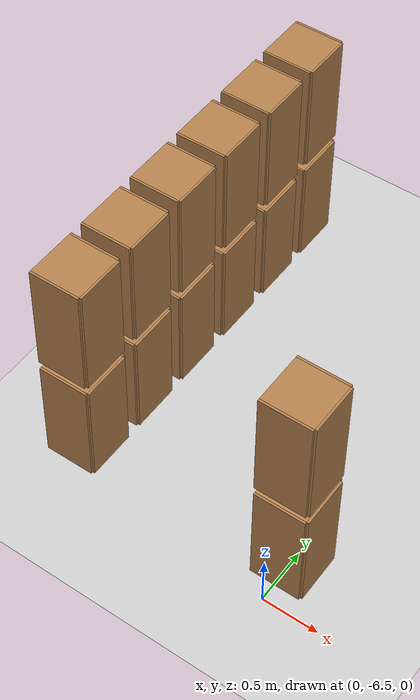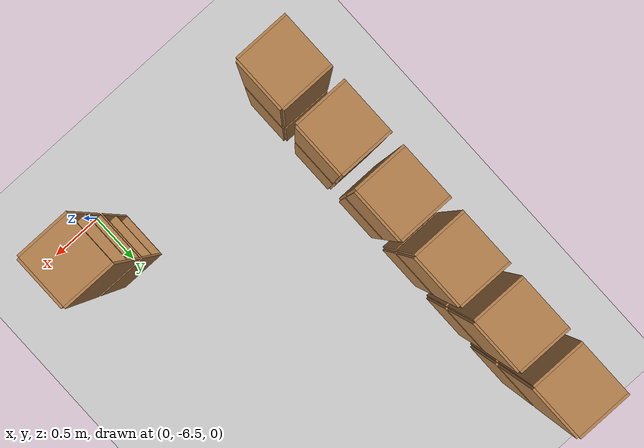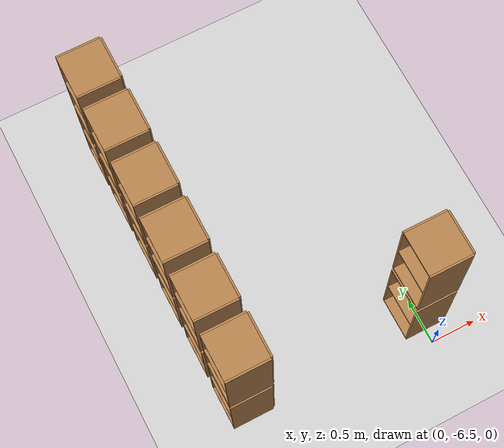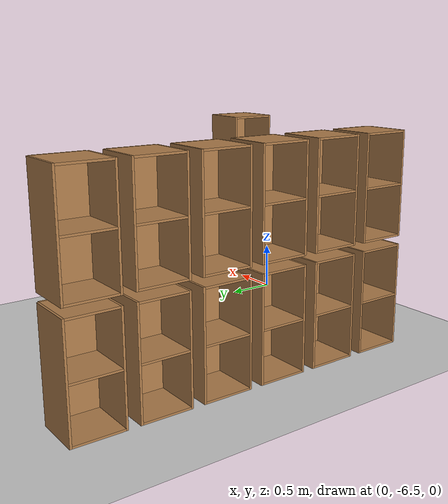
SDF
<sdf version="1.7">
 <world name="default">
  <model name="ground_plane">
   <static>1</static>
   <link name="link">
    <collision name="collision">
     <geometry><plane><normal>0 0 1</normal><size>100 100</size></plane></geometry>
     <surface><friction><ode><mu>100</mu><mu2>50</mu2></ode></friction></surface>
    </collision>
    <visual name="visual">
     <cast_shadows>0</cast_shadows>
     <geometry><plane><normal>0 0 1</normal><size>100 100</size></plane></geometry>
     <material>
      <script><uri>file://media/materials/scripts/gazebo.material</uri><name>Gazebo/Grey</name></script>
     </material>
    </visual>
   </link>
  </model>
  <model name="cabinet_53">
   <static>1</static>
   <link name="cabinet_bottom_plate">
    <inertial>
     <pose>0 0 -1 0 -0 0</pose>
     <inertia><ixx>2.05</ixx><ixy>0</ixy><ixz>0</ixz><iyy>2.05</iyy><iyz>0</iyz><izz>2.05</izz></inertia>
     <mass>25</mass>
    </inertial>
    <collision name="cabinet_bottom_plate_geom">
     <pose>0 0 0.01 0 -0 0</pose>
     <geometry><box><size>0.45 0.45 0.02</size></box></geometry>
    </collision>
    <visual name="cabinet_bottom_plate_geom_visual">
     <pose>0 0 0.01 0 -0 0</pose>
     <geometry><box><size>0.45 0.45 0.02</size></box></geometry>
     <material>
      <script><uri>file://media/materials/scripts/gazebo.material</uri><name>Gazebo/Wood</name></script>
     </material>
    </visual>
    <collision name="cabinet_bottom_plate_geom_cabinet_back_plate">
     <pose>0.235 0 0.51 0 -0 0</pose>
     <geometry><box><size>0.02 0.45 1.02</size></box></geometry>
    </collision>
    <visual name="cabinet_bottom_plate_geom_cabinet_back_plate_visual">
     <pose>0.235 0 0.51 0 -0 0</pose>
     <geometry><box><size>0.02 0.45 1.02</size></box></geometry>
     <material>
      <script><uri>file://media/materials/scripts/gazebo.material</uri><name>Gazebo/Wood</name></script>
     </material>
    </visual>
    <collision name="cabinet_bottom_plate_geom_cabinet_left_plate">
     <pose>0 0.235 0.51 0 -0 0</pose>
     <geometry><box><size>0.45 0.02 1.02</size></box></geometry>
    </collision>
    <visual name="cabinet_bottom_plate_geom_cabinet_left_plate_visual">
     <pose>0 0.235 0.51 0 -0 0</pose>
     <geometry><box><size>0.45 0.02 1.02</size></box></geometry>
     <material>
      <script><uri>file://media/materials/scripts/gazebo.material</uri><name>Gazebo/Wood</name></script>
     </material>
    </visual>
    <collision name="cabinet_bottom_plate_geom_cabinet_middle_plate">
     <pose>0 0 0.51 0 -0 0</pose>
     <geometry><box><size>0.45 0.45 0.02</size></box></geometry>
    </collision>
    <visual name="cabinet_bottom_plate_geom_cabinet_middle_plate_visual">
     <pose>0 0 0.51 0 -0 0</pose>
     <geometry><box><size>0.45 0.45 0.02</size></box></geometry>
     <material>
      <script><uri>file://media/materials/scripts/gazebo.material</uri><name>Gazebo/Wood</name></script>
     </material>
    </visual>
    <collision name="cabinet_bottom_plate_geom_cabinet_right_plate">
     <pose>0 -0.235 0.51 0 -0 0</pose>
     <geometry><box><size>0.45 0.02 1.02</size></box></geometry>
    </collision>
    <visual name="cabinet_bottom_plate_geom_cabinet_right_plate_visual">
     <pose>0 -0.235 0.51 0 -0 0</pose>
     <geometry><box><size>0.45 0.02 1.02</size></box></geometry>
     <material>
      <script><uri>file://media/materials/scripts/gazebo.material</uri><name>Gazebo/Wood</name></script>
     </material>
    </visual>
    <collision name="cabinet_bottom_plate_geom_cabinet_top_plate">
     <pose>0 0 1.01 0 -0 0</pose>
     <geometry><box><size>0.45 0.45 0.02</size></box></geometry>
    </collision>
    <visual name="cabinet_bottom_plate_geom_cabinet_top_plate_visual">
     <pose>0 0 1.01 0 -0 0</pose>
     <geometry><box><size>0.45 0.45 0.02</size></box></geometry>
     <material>
      <script><uri>file://media/materials/scripts/gazebo.material</uri><name>Gazebo/Wood</name></script>
     </material>
    </visual>
   </link>
   <pose>0 -6.1 0 0 -0 0</pose>
  </model>
  <model name="cabinet_55">
   <static>1</static>
   <link name="cabinet_bottom_plate">
    <inertial>
     <pose>0 0 -1 0 -0 0</pose>
     <inertia><ixx>2.05</ixx><ixy>0</ixy><ixz>0</ixz><iyy>2.05</iyy><iyz>0</iyz><izz>2.05</izz></inertia>
     <mass>25</mass>
    </inertial>
    <collision name="cabinet_bottom_plate_geom">
     <pose>0 0 0.01 0 -0 0</pose>
     <geometry><box><size>0.45 0.45 0.02</size></box></geometry>
    </collision>
    <visual name="cabinet_bottom_plate_geom_visual">
     <pose>0 0 0.01 0 -0 0</pose>
     <geometry><box><size>0.45 0.45 0.02</size></box></geometry>
     <material>
      <script><uri>file://media/materials/scripts/gazebo.material</uri><name>Gazebo/Wood</name></script>
     </material>
    </visual>
    <collision name="cabinet_bottom_plate_geom_cabinet_back_plate">
     <pose>0.235 0 0.51 0 -0 0</pose>
     <geometry><box><size>0.02 0.45 1.02</size></box></geometry>
    </collision>
    <visual name="cabinet_bottom_plate_geom_cabinet_back_plate_visual">
     <pose>0.235 0 0.51 0 -0 0</pose>
     <geometry><box><size>0.02 0.45 1.02</size></box></geometry>
     <material>
      <script><uri>file://media/materials/scripts/gazebo.material</uri><name>Gazebo/Wood</name></script>
     </material>
    </visual>
    <collision name="cabinet_bottom_plate_geom_cabinet_left_plate">
     <pose>0 0.235 0.51 0 -0 0</pose>
     <geometry><box><size>0.45 0.02 1.02</size></box></geometry>
    </collision>
    <visual name="cabinet_bottom_plate_geom_cabinet_left_plate_visual">
     <pose>0 0.235 0.51 0 -0 0</pose>
     <geometry><box><size>0.45 0.02 1.02</size></box></geometry>
     <material>
      <script><uri>file://media/materials/scripts/gazebo.material</uri><name>Gazebo/Wood</name></script>
     </material>
    </visual>
    <collision name="cabinet_bottom_plate_geom_cabinet_middle_plate">
     <pose>0 0 0.51 0 -0 0</pose>
     <geometry><box><size>0.45 0.45 0.02</size></box></geometry>
    </collision>
    <visual name="cabinet_bottom_plate_geom_cabinet_middle_plate_visual">
     <pose>0 0 0.51 0 -0 0</pose>
     <geometry><box><size>0.45 0.45 0.02</size></box></geometry>
     <material>
      <script><uri>file://media/materials/scripts/gazebo.material</uri><name>Gazebo/Wood</name></script>
     </material>
    </visual>
    <collision name="cabinet_bottom_plate_geom_cabinet_right_plate">
     <pose>0 -0.235 0.51 0 -0 0</pose>
     <geometry><box><size>0.45 0.02 1.02</size></box></geometry>
    </collision>
    <visual name="cabinet_bottom_plate_geom_cabinet_right_plate_visual">
     <pose>0 -0.235 0.51 0 -0 0</pose>
     <geometry><box><size>0.45 0.02 1.02</size></box></geometry>
     <material>
      <script><uri>file://media/materials/scripts/gazebo.material</uri><name>Gazebo/Wood</name></script>
     </material>
    </visual>
    <collision name="cabinet_bottom_plate_geom_cabinet_top_plate">
     <pose>0 0 1.01 0 -0 0</pose>
     <geometry><box><size>0.45 0.45 0.02</size></box></geometry>
    </collision>
    <visual name="cabinet_bottom_plate_geom_cabinet_top_plate_visual">
     <pose>0 0 1.01 0 -0 0</pose>
     <geometry><box><size>0.45 0.45 0.02</size></box></geometry>
     <material>
      <script><uri>file://media/materials/scripts/gazebo.material</uri><name>Gazebo/Wood</name></script>
     </material>
    </visual>
   </link>
   <pose>-2 -3.7 0 0 -0 0</pose>
  </model>
  <model name="cabinet_56">
   <static>1</static>
   <link name="cabinet_bottom_plate">
    <inertial>
     <pose>0 0 -1 0 -0 0</pose>
     <inertia><ixx>2.05</ixx><ixy>0</ixy><ixz>0</ixz><iyy>2.05</iyy><iyz>0</iyz><izz>2.05</izz></inertia>
     <mass>25</mass>
    </inertial>
    <collision name="cabinet_bottom_plate_geom">
     <pose>0 0 0.01 0 -0 0</pose>
     <geometry><box><size>0.45 0.45 0.02</size></box></geometry>
    </collision>
    <visual name="cabinet_bottom_plate_geom_visual">
     <pose>0 0 0.01 0 -0 0</pose>
     <geometry><box><size>0.45 0.45 0.02</size></box></geometry>
     <material>
      <script><uri>file://media/materials/scripts/gazebo.material</uri><name>Gazebo/Wood</name></script>
     </material>
    </visual>
    <collision name="cabinet_bottom_plate_geom_cabinet_back_plate">
     <pose>0.235 0 0.51 0 -0 0</pose>
     <geometry><box><size>0.02 0.45 1.02</size></box></geometry>
    </collision>
    <visual name="cabinet_bottom_plate_geom_cabinet_back_plate_visual">
     <pose>0.235 0 0.51 0 -0 0</pose>
     <geometry><box><size>0.02 0.45 1.02</size></box></geometry>
     <material>
      <script><uri>file://media/materials/scripts/gazebo.material</uri><name>Gazebo/Wood</name></script>
     </material>
    </visual>
    <collision name="cabinet_bottom_plate_geom_cabinet_left_plate">
     <pose>0 0.235 0.51 0 -0 0</pose>
     <geometry><box><size>0.45 0.02 1.02</size></box></geometry>
    </collision>
    <visual name="cabinet_bottom_plate_geom_cabinet_left_plate_visual">
     <pose>0 0.235 0.51 0 -0 0</pose>
     <geometry><box><size>0.45 0.02 1.02</size></box></geometry>
     <material>
      <script><uri>file://media/materials/scripts/gazebo.material</uri><name>Gazebo/Wood</name></script>
     </material>
    </visual>
    <collision name="cabinet_bottom_plate_geom_cabinet_middle_plate">
     <pose>0 0 0.51 0 -0 0</pose>
     <geometry><box><size>0.45 0.45 0.02</size></box></geometry>
    </collision>
    <visual name="cabinet_bottom_plate_geom_cabinet_middle_plate_visual">
     <pose>0 0 0.51 0 -0 0</pose>
     <geometry><box><size>0.45 0.45 0.02</size></box></geometry>
     <material>
      <script><uri>file://media/materials/scripts/gazebo.material</uri><name>Gazebo/Wood</name></script>
     </material>
    </visual>
    <collision name="cabinet_bottom_plate_geom_cabinet_right_plate">
     <pose>0 -0.235 0.51 0 -0 0</pose>
     <geometry><box><size>0.45 0.02 1.02</size></box></geometry>
    </collision>
    <visual name="cabinet_bottom_plate_geom_cabinet_right_plate_visual">
     <pose>0 -0.235 0.51 0 -0 0</pose>
     <geometry><box><size>0.45 0.02 1.02</size></box></geometry>
     <material>
      <script><uri>file://media/materials/scripts/gazebo.material</uri><name>Gazebo/Wood</name></script>
     </material>
    </visual>
    <collision name="cabinet_bottom_plate_geom_cabinet_top_plate">
     <pose>0 0 1.01 0 -0 0</pose>
     <geometry><box><size>0.45 0.45 0.02</size></box></geometry>
    </collision>
    <visual name="cabinet_bottom_plate_geom_cabinet_top_plate_visual">
     <pose>0 0 1.01 0 -0 0</pose>
     <geometry><box><size>0.45 0.45 0.02</size></box></geometry>
     <material>
      <script><uri>file://media/materials/scripts/gazebo.material</uri><name>Gazebo/Wood</name></script>
     </material>
    </visual>
   </link>
   <pose>-2 -4.3 0 0 -0 0</pose>
  </model>
  <model name="cabinet_57">
   <static>1</static>
   <link name="cabinet_bottom_plate">
    <inertial>
     <pose>0 0 -1 0 -0 0</pose>
     <inertia><ixx>2.05</ixx><ixy>0</ixy><ixz>0</ixz><iyy>2.05</iyy><iyz>0</iyz><izz>2.05</izz></inertia>
     <mass>25</mass>
    </inertial>
    <collision name="cabinet_bottom_plate_geom">
     <pose>0 0 0.01 0 -0 0</pose>
     <geometry><box><size>0.45 0.45 0.02</size></box></geometry>
    </collision>
    <visual name="cabinet_bottom_plate_geom_visual">
     <pose>0 0 0.01 0 -0 0</pose>
     <geometry><box><size>0.45 0.45 0.02</size></box></geometry>
     <material>
      <script><uri>file://media/materials/scripts/gazebo.material</uri><name>Gazebo/Wood</name></script>
     </material>
    </visual>
    <collision name="cabinet_bottom_plate_geom_cabinet_back_plate">
     <pose>0.235 0 0.51 0 -0 0</pose>
     <geometry><box><size>0.02 0.45 1.02</size></box></geometry>
    </collision>
    <visual name="cabinet_bottom_plate_geom_cabinet_back_plate_visual">
     <pose>0.235 0 0.51 0 -0 0</pose>
     <geometry><box><size>0.02 0.45 1.02</size></box></geometry>
     <material>
      <script><uri>file://media/materials/scripts/gazebo.material</uri><name>Gazebo/Wood</name></script>
     </material>
    </visual>
    <collision name="cabinet_bottom_plate_geom_cabinet_left_plate">
     <pose>0 0.235 0.51 0 -0 0</pose>
     <geometry><box><size>0.45 0.02 1.02</size></box></geometry>
    </collision>
    <visual name="cabinet_bottom_plate_geom_cabinet_left_plate_visual">
     <pose>0 0.235 0.51 0 -0 0</pose>
     <geometry><box><size>0.45 0.02 1.02</size></box></geometry>
     <material>
      <script><uri>file://media/materials/scripts/gazebo.material</uri><name>Gazebo/Wood</name></script>
     </material>
    </visual>
    <collision name="cabinet_bottom_plate_geom_cabinet_middle_plate">
     <pose>0 0 0.51 0 -0 0</pose>
     <geometry><box><size>0.45 0.45 0.02</size></box></geometry>
    </collision>
    <visual name="cabinet_bottom_plate_geom_cabinet_middle_plate_visual">
     <pose>0 0 0.51 0 -0 0</pose>
     <geometry><box><size>0.45 0.45 0.02</size></box></geometry>
     <material>
      <script><uri>file://media/materials/scripts/gazebo.material</uri><name>Gazebo/Wood</name></script>
     </material>
    </visual>
    <collision name="cabinet_bottom_plate_geom_cabinet_right_plate">
     <pose>0 -0.235 0.51 0 -0 0</pose>
     <geometry><box><size>0.45 0.02 1.02</size></box></geometry>
    </collision>
    <visual name="cabinet_bottom_plate_geom_cabinet_right_plate_visual">
     <pose>0 -0.235 0.51 0 -0 0</pose>
     <geometry><box><size>0.45 0.02 1.02</size></box></geometry>
     <material>
      <script><uri>file://media/materials/scripts/gazebo.material</uri><name>Gazebo/Wood</name></script>
     </material>
    </visual>
    <collision name="cabinet_bottom_plate_geom_cabinet_top_plate">
     <pose>0 0 1.01 0 -0 0</pose>
     <geometry><box><size>0.45 0.45 0.02</size></box></geometry>
    </collision>
    <visual name="cabinet_bottom_plate_geom_cabinet_top_plate_visual">
     <pose>0 0 1.01 0 -0 0</pose>
     <geometry><box><size>0.45 0.45 0.02</size></box></geometry>
     <material>
      <script><uri>file://media/materials/scripts/gazebo.material</uri><name>Gazebo/Wood</name></script>
     </material>
    </visual>
   </link>
   <pose>-2 -3.1 0 0 -0 0</pose>
  </model>
  <model name="cabinet_58">
   <static>1</static>
   <link name="cabinet_bottom_plate">
    <inertial>
     <pose>0 0 -1 0 -0 0</pose>
     <inertia><ixx>2.05</ixx><ixy>0</ixy><ixz>0</ixz><iyy>2.05</iyy><iyz>0</iyz><izz>2.05</izz></inertia>
     <mass>25</mass>
    </inertial>
    <collision name="cabinet_bottom_plate_geom">
     <pose>0 0 0.01 0 -0 0</pose>
     <geometry><box><size>0.45 0.45 0.02</size></box></geometry>
    </collision>
    <visual name="cabinet_bottom_plate_geom_visual">
     <pose>0 0 0.01 0 -0 0</pose>
     <geometry><box><size>0.45 0.45 0.02</size></box></geometry>
     <material>
      <script><uri>file://media/materials/scripts/gazebo.material</uri><name>Gazebo/Wood</name></script>
     </material>
    </visual>
    <collision name="cabinet_bottom_plate_geom_cabinet_back_plate">
     <pose>0.235 0 0.51 0 -0 0</pose>
     <geometry><box><size>0.02 0.45 1.02</size></box></geometry>
    </collision>
    <visual name="cabinet_bottom_plate_geom_cabinet_back_plate_visual">
     <pose>0.235 0 0.51 0 -0 0</pose>
     <geometry><box><size>0.02 0.45 1.02</size></box></geometry>
     <material>
      <script><uri>file://media/materials/scripts/gazebo.material</uri><name>Gazebo/Wood</name></script>
     </material>
    </visual>
    <collision name="cabinet_bottom_plate_geom_cabinet_left_plate">
     <pose>0 0.235 0.51 0 -0 0</pose>
     <geometry><box><size>0.45 0.02 1.02</size></box></geometry>
    </collision>
    <visual name="cabinet_bottom_plate_geom_cabinet_left_plate_visual">
     <pose>0 0.235 0.51 0 -0 0</pose>
     <geometry><box><size>0.45 0.02 1.02</size></box></geometry>
     <material>
      <script><uri>file://media/materials/scripts/gazebo.material</uri><name>Gazebo/Wood</name></script>
     </material>
    </visual>
    <collision name="cabinet_bottom_plate_geom_cabinet_middle_plate">
     <pose>0 0 0.51 0 -0 0</pose>
     <geometry><box><size>0.45 0.45 0.02</size></box></geometry>
    </collision>
    <visual name="cabinet_bottom_plate_geom_cabinet_middle_plate_visual">
     <pose>0 0 0.51 0 -0 0</pose>
     <geometry><box><size>0.45 0.45 0.02</size></box></geometry>
     <material>
      <script><uri>file://media/materials/scripts/gazebo.material</uri><name>Gazebo/Wood</name></script>
     </material>
    </visual>
    <collision name="cabinet_bottom_plate_geom_cabinet_right_plate">
     <pose>0 -0.235 0.51 0 -0 0</pose>
     <geometry><box><size>0.45 0.02 1.02</size></box></geometry>
    </collision>
    <visual name="cabinet_bottom_plate_geom_cabinet_right_plate_visual">
     <pose>0 -0.235 0.51 0 -0 0</pose>
     <geometry><box><size>0.45 0.02 1.02</size></box></geometry>
     <material>
      <script><uri>file://media/materials/scripts/gazebo.material</uri><name>Gazebo/Wood</name></script>
     </material>
    </visual>
    <collision name="cabinet_bottom_plate_geom_cabinet_top_plate">
     <pose>0 0 1.01 0 -0 0</pose>
     <geometry><box><size>0.45 0.45 0.02</size></box></geometry>
    </collision>
    <visual name="cabinet_bottom_plate_geom_cabinet_top_plate_visual">
     <pose>0 0 1.01 0 -0 0</pose>
     <geometry><box><size>0.45 0.45 0.02</size></box></geometry>
     <material>
      <script><uri>file://media/materials/scripts/gazebo.material</uri><name>Gazebo/Wood</name></script>
     </material>
    </visual>
   </link>
   <pose>-2 -4.9 0 0 -0 0</pose>
  </model>
  <model name="cabinet_59">
   <static>1</static>
   <link name="cabinet_bottom_plate">
    <inertial>
     <pose>0 0 -1 0 -0 0</pose>
     <inertia><ixx>2.05</ixx><ixy>0</ixy><ixz>0</ixz><iyy>2.05</iyy><iyz>0</iyz><izz>2.05</izz></inertia>
     <mass>25</mass>
    </inertial>
    <collision name="cabinet_bottom_plate_geom">
     <pose>0 0 0.01 0 -0 0</pose>
     <geometry><box><size>0.45 0.45 0.02</size></box></geometry>
    </collision>
    <visual name="cabinet_bottom_plate_geom_visual">
     <pose>0 0 0.01 0 -0 0</pose>
     <geometry><box><size>0.45 0.45 0.02</size></box></geometry>
     <material>
      <script><uri>file://media/materials/scripts/gazebo.material</uri><name>Gazebo/Wood</name></script>
     </material>
    </visual>
    <collision name="cabinet_bottom_plate_geom_cabinet_back_plate">
     <pose>0.235 0 0.51 0 -0 0</pose>
     <geometry><box><size>0.02 0.45 1.02</size></box></geometry>
    </collision>
    <visual name="cabinet_bottom_plate_geom_cabinet_back_plate_visual">
     <pose>0.235 0 0.51 0 -0 0</pose>
     <geometry><box><size>0.02 0.45 1.02</size></box></geometry>
     <material>
      <script><uri>file://media/materials/scripts/gazebo.material</uri><name>Gazebo/Wood</name></script>
     </material>
    </visual>
    <collision name="cabinet_bottom_plate_geom_cabinet_left_plate">
     <pose>0 0.235 0.51 0 -0 0</pose>
     <geometry><box><size>0.45 0.02 1.02</size></box></geometry>
    </collision>
    <visual name="cabinet_bottom_plate_geom_cabinet_left_plate_visual">
     <pose>0 0.235 0.51 0 -0 0</pose>
     <geometry><box><size>0.45 0.02 1.02</size></box></geometry>
     <material>
      <script><uri>file://media/materials/scripts/gazebo.material</uri><name>Gazebo/Wood</name></script>
     </material>
    </visual>
    <collision name="cabinet_bottom_plate_geom_cabinet_middle_plate">
     <pose>0 0 0.51 0 -0 0</pose>
     <geometry><box><size>0.45 0.45 0.02</size></box></geometry>
    </collision>
    <visual name="cabinet_bottom_plate_geom_cabinet_middle_plate_visual">
     <pose>0 0 0.51 0 -0 0</pose>
     <geometry><box><size>0.45 0.45 0.02</size></box></geometry>
     <material>
      <script><uri>file://media/materials/scripts/gazebo.material</uri><name>Gazebo/Wood</name></script>
     </material>
    </visual>
    <collision name="cabinet_bottom_plate_geom_cabinet_right_plate">
     <pose>0 -0.235 0.51 0 -0 0</pose>
     <geometry><box><size>0.45 0.02 1.02</size></box></geometry>
    </collision>
    <visual name="cabinet_bottom_plate_geom_cabinet_right_plate_visual">
     <pose>0 -0.235 0.51 0 -0 0</pose>
     <geometry><box><size>0.45 0.02 1.02</size></box></geometry>
     <material>
      <script><uri>file://media/materials/scripts/gazebo.material</uri><name>Gazebo/Wood</name></script>
     </material>
    </visual>
    <collision name="cabinet_bottom_plate_geom_cabinet_top_plate">
     <pose>0 0 1.01 0 -0 0</pose>
     <geometry><box><size>0.45 0.45 0.02</size></box></geometry>
    </collision>
    <visual name="cabinet_bottom_plate_geom_cabinet_top_plate_visual">
     <pose>0 0 1.01 0 -0 0</pose>
     <geometry><box><size>0.45 0.45 0.02</size></box></geometry>
     <material>
      <script><uri>file://media/materials/scripts/gazebo.material</uri><name>Gazebo/Wood</name></script>
     </material>
    </visual>
   </link>
   <pose>-2 -5.5 0 0 -0 0</pose>
  </model>
  <model name="cabinet_60">
   <static>1</static>
   <link name="cabinet_bottom_plate">
    <inertial>
     <pose>0 0 -1 0 -0 0</pose>
     <inertia><ixx>2.05</ixx><ixy>0</ixy><ixz>0</ixz><iyy>2.05</iyy><iyz>0</iyz><izz>2.05</izz></inertia>
     <mass>25</mass>
    </inertial>
    <collision name="cabinet_bottom_plate_geom">
     <pose>0 0 0.01 0 -0 0</pose>
     <geometry><box><size>0.45 0.45 0.02</size></box></geometry>
    </collision>
    <visual name="cabinet_bottom_plate_geom_visual">
     <pose>0 0 0.01 0 -0 0</pose>
     <geometry><box><size>0.45 0.45 0.02</size></box></geometry>
     <material>
      <script><uri>file://media/materials/scripts/gazebo.material</uri><name>Gazebo/Wood</name></script>
     </material>
    </visual>
    <collision name="cabinet_bottom_plate_geom_cabinet_back_plate">
     <pose>0.235 0 0.51 0 -0 0</pose>
     <geometry><box><size>0.02 0.45 1.02</size></box></geometry>
    </collision>
    <visual name="cabinet_bottom_plate_geom_cabinet_back_plate_visual">
     <pose>0.235 0 0.51 0 -0 0</pose>
     <geometry><box><size>0.02 0.45 1.02</size></box></geometry>
     <material>
      <script><uri>file://media/materials/scripts/gazebo.material</uri><name>Gazebo/Wood</name></script>
     </material>
    </visual>
    <collision name="cabinet_bottom_plate_geom_cabinet_left_plate">
     <pose>0 0.235 0.51 0 -0 0</pose>
     <geometry><box><size>0.45 0.02 1.02</size></box></geometry>
    </collision>
    <visual name="cabinet_bottom_plate_geom_cabinet_left_plate_visual">
     <pose>0 0.235 0.51 0 -0 0</pose>
     <geometry><box><size>0.45 0.02 1.02</size></box></geometry>
     <material>
      <script><uri>file://media/materials/scripts/gazebo.material</uri><name>Gazebo/Wood</name></script>
     </material>
    </visual>
    <collision name="cabinet_bottom_plate_geom_cabinet_middle_plate">
     <pose>0 0 0.51 0 -0 0</pose>
     <geometry><box><size>0.45 0.45 0.02</size></box></geometry>
    </collision>
    <visual name="cabinet_bottom_plate_geom_cabinet_middle_plate_visual">
     <pose>0 0 0.51 0 -0 0</pose>
     <geometry><box><size>0.45 0.45 0.02</size></box></geometry>
     <material>
      <script><uri>file://media/materials/scripts/gazebo.material</uri><name>Gazebo/Wood</name></script>
     </material>
    </visual>
    <collision name="cabinet_bottom_plate_geom_cabinet_right_plate">
     <pose>0 -0.235 0.51 0 -0 0</pose>
     <geometry><box><size>0.45 0.02 1.02</size></box></geometry>
    </collision>
    <visual name="cabinet_bottom_plate_geom_cabinet_right_plate_visual">
     <pose>0 -0.235 0.51 0 -0 0</pose>
     <geometry><box><size>0.45 0.02 1.02</size></box></geometry>
     <material>
      <script><uri>file://media/materials/scripts/gazebo.material</uri><name>Gazebo/Wood</name></script>
     </material>
    </visual>
    <collision name="cabinet_bottom_plate_geom_cabinet_top_plate">
     <pose>0 0 1.01 0 -0 0</pose>
     <geometry><box><size>0.45 0.45 0.02</size></box></geometry>
    </collision>
    <visual name="cabinet_bottom_plate_geom_cabinet_top_plate_visual">
     <pose>0 0 1.01 0 -0 0</pose>
     <geometry><box><size>0.45 0.45 0.02</size></box></geometry>
     <material>
      <script><uri>file://media/materials/scripts/gazebo.material</uri><name>Gazebo/Wood</name></script>
     </material>
    </visual>
   </link>
   <pose>-2 -6.1 0 0 -0 0</pose>
  </model>
  <model name="cabinet_16_clone_15">
   <static>1</static>
   <link name="cabinet_bottom_plate">
    <inertial>
     <pose>0 0 -1 0 -0 0</pose>
     <inertia><ixx>2.05</ixx><ixy>0</ixy><ixz>0</ixz><iyy>2.05</iyy><iyz>0</iyz><izz>2.05</izz></inertia>
     <mass>25</mass>
    </inertial>
    <collision name="cabinet_bottom_plate_geom">
     <pose>0 0 0.01 0 -0 0</pose>
     <geometry><box><size>0.45 0.45 0.02</size></box></geometry>
    </collision>
    <visual name="cabinet_bottom_plate_geom_visual">
     <pose>0 0 0.01 0 -0 0</pose>
     <geometry><box><size>0.45 0.45 0.02</size></box></geometry>
     <material>
      <script><uri>file://media/materials/scripts/gazebo.material</uri><name>Gazebo/Wood</name></script>
     </material>
    </visual>
    <collision name="cabinet_bottom_plate_geom_cabinet_back_plate">
     <pose>0.235 0 0.51 0 -0 0</pose>
     <geometry><box><size>0.02 0.45 1.02</size></box></geometry>
    </collision>
    <visual name="cabinet_bottom_plate_geom_cabinet_back_plate_visual">
     <pose>0.235 0 0.51 0 -0 0</pose>
     <geometry><box><size>0.02 0.45 1.02</size></box></geometry>
     <material>
      <script><uri>file://media/materials/scripts/gazebo.material</uri><name>Gazebo/Wood</name></script>
     </material>
    </visual>
    <collision name="cabinet_bottom_plate_geom_cabinet_left_plate">
     <pose>0 0.235 0.51 0 -0 0</pose>
     <geometry><box><size>0.45 0.02 1.02</size></box></geometry>
    </collision>
    <visual name="cabinet_bottom_plate_geom_cabinet_left_plate_visual">
     <pose>0 0.235 0.51 0 -0 0</pose>
     <geometry><box><size>0.45 0.02 1.02</size></box></geometry>
     <material>
      <script><uri>file://media/materials/scripts/gazebo.material</uri><name>Gazebo/Wood</name></script>
     </material>
    </visual>
    <collision name="cabinet_bottom_plate_geom_cabinet_middle_plate">
     <pose>0 0 0.51 0 -0 0</pose>
     <geometry><box><size>0.45 0.45 0.02</size></box></geometry>
    </collision>
    <visual name="cabinet_bottom_plate_geom_cabinet_middle_plate_visual">
     <pose>0 0 0.51 0 -0 0</pose>
     <geometry><box><size>0.45 0.45 0.02</size></box></geometry>
     <material>
      <script><uri>file://media/materials/scripts/gazebo.material</uri><name>Gazebo/Wood</name></script>
     </material>
    </visual>
    <collision name="cabinet_bottom_plate_geom_cabinet_right_plate">
     <pose>0 -0.235 0.51 0 -0 0</pose>
     <geometry><box><size>0.45 0.02 1.02</size></box></geometry>
    </collision>
    <visual name="cabinet_bottom_plate_geom_cabinet_right_plate_visual">
     <pose>0 -0.235 0.51 0 -0 0</pose>
     <geometry><box><size>0.45 0.02 1.02</size></box></geometry>
     <material>
      <script><uri>file://media/materials/scripts/gazebo.material</uri><name>Gazebo/Wood</name></script>
     </material>
    </visual>
    <collision name="cabinet_bottom_plate_geom_cabinet_top_plate">
     <pose>0 0 1.01 0 -0 0</pose>
     <geometry><box><size>0.45 0.45 0.02</size></box></geometry>
    </collision>
    <visual name="cabinet_bottom_plate_geom_cabinet_top_plate_visual">
     <pose>0 0 1.01 0 -0 0</pose>
     <geometry><box><size>0.45 0.45 0.02</size></box></geometry>
     <material>
      <script><uri>file://media/materials/scripts/gazebo.material</uri><name>Gazebo/Wood</name></script>
     </material>
    </visual>
   </link>
   <pose>0 -6.1 1.1 0 -0 0</pose>
  </model>
  <model name="cabinet_16_clone_16">
   <static>1</static>
   <link name="cabinet_bottom_plate">
    <inertial>
     <pose>0 0 -1 0 -0 0</pose>
     <inertia><ixx>2.05</ixx><ixy>0</ixy><ixz>0</ixz><iyy>2.05</iyy><iyz>0</iyz><izz>2.05</izz></inertia>
     <mass>25</mass>
    </inertial>
    <collision name="cabinet_bottom_plate_geom">
     <pose>0 0 0.01 0 -0 0</pose>
     <geometry><box><size>0.45 0.45 0.02</size></box></geometry>
    </collision>
    <visual name="cabinet_bottom_plate_geom_visual">
     <pose>0 0 0.01 0 -0 0</pose>
     <geometry><box><size>0.45 0.45 0.02</size></box></geometry>
     <material>
      <script><uri>file://media/materials/scripts/gazebo.material</uri><name>Gazebo/Wood</name></script>
     </material>
    </visual>
    <collision name="cabinet_bottom_plate_geom_cabinet_back_plate">
     <pose>0.235 0 0.51 0 -0 0</pose>
     <geometry><box><size>0.02 0.45 1.02</size></box></geometry>
    </collision>
    <visual name="cabinet_bottom_plate_geom_cabinet_back_plate_visual">
     <pose>0.235 0 0.51 0 -0 0</pose>
     <geometry><box><size>0.02 0.45 1.02</size></box></geometry>
     <material>
      <script><uri>file://media/materials/scripts/gazebo.material</uri><name>Gazebo/Wood</name></script>
     </material>
    </visual>
    <collision name="cabinet_bottom_plate_geom_cabinet_left_plate">
     <pose>0 0.235 0.51 0 -0 0</pose>
     <geometry><box><size>0.45 0.02 1.02</size></box></geometry>
    </collision>
    <visual name="cabinet_bottom_plate_geom_cabinet_left_plate_visual">
     <pose>0 0.235 0.51 0 -0 0</pose>
     <geometry><box><size>0.45 0.02 1.02</size></box></geometry>
     <material>
      <script><uri>file://media/materials/scripts/gazebo.material</uri><name>Gazebo/Wood</name></script>
     </material>
    </visual>
    <collision name="cabinet_bottom_plate_geom_cabinet_middle_plate">
     <pose>0 0 0.51 0 -0 0</pose>
     <geometry><box><size>0.45 0.45 0.02</size></box></geometry>
    </collision>
    <visual name="cabinet_bottom_plate_geom_cabinet_middle_plate_visual">
     <pose>0 0 0.51 0 -0 0</pose>
     <geometry><box><size>0.45 0.45 0.02</size></box></geometry>
     <material>
      <script><uri>file://media/materials/scripts/gazebo.material</uri><name>Gazebo/Wood</name></script>
     </material>
    </visual>
    <collision name="cabinet_bottom_plate_geom_cabinet_right_plate">
     <pose>0 -0.235 0.51 0 -0 0</pose>
     <geometry><box><size>0.45 0.02 1.02</size></box></geometry>
    </collision>
    <visual name="cabinet_bottom_plate_geom_cabinet_right_plate_visual">
     <pose>0 -0.235 0.51 0 -0 0</pose>
     <geometry><box><size>0.45 0.02 1.02</size></box></geometry>
     <material>
      <script><uri>file://media/materials/scripts/gazebo.material</uri><name>Gazebo/Wood</name></script>
     </material>
    </visual>
    <collision name="cabinet_bottom_plate_geom_cabinet_top_plate">
     <pose>0 0 1.01 0 -0 0</pose>
     <geometry><box><size>0.45 0.45 0.02</size></box></geometry>
    </collision>
    <visual name="cabinet_bottom_plate_geom_cabinet_top_plate_visual">
     <pose>0 0 1.01 0 -0 0</pose>
     <geometry><box><size>0.45 0.45 0.02</size></box></geometry>
     <material>
      <script><uri>file://media/materials/scripts/gazebo.material</uri><name>Gazebo/Wood</name></script>
     </material>
    </visual>
   </link>
   <pose>-2 -3.1 1.1 0 -0 0</pose>
  </model>
  <model name="cabinet_16_clone_17">
   <static>1</static>
   <link name="cabinet_bottom_plate">
    <inertial>
     <pose>0 0 -1 0 -0 0</pose>
     <inertia><ixx>2.05</ixx><ixy>0</ixy><ixz>0</ixz><iyy>2.05</iyy><iyz>0</iyz><izz>2.05</izz></inertia>
     <mass>25</mass>
    </inertial>
    <collision name="cabinet_bottom_plate_geom">
     <pose>0 0 0.01 0 -0 0</pose>
     <geometry><box><size>0.45 0.45 0.02</size></box></geometry>
    </collision>
    <visual name="cabinet_bottom_plate_geom_visual">
     <pose>0 0 0.01 0 -0 0</pose>
     <geometry><box><size>0.45 0.45 0.02</size></box></geometry>
     <material>
      <script><uri>file://media/materials/scripts/gazebo.material</uri><name>Gazebo/Wood</name></script>
     </material>
    </visual>
    <collision name="cabinet_bottom_plate_geom_cabinet_back_plate">
     <pose>0.235 0 0.51 0 -0 0</pose>
     <geometry><box><size>0.02 0.45 1.02</size></box></geometry>
    </collision>
    <visual name="cabinet_bottom_plate_geom_cabinet_back_plate_visual">
     <pose>0.235 0 0.51 0 -0 0</pose>
     <geometry><box><size>0.02 0.45 1.02</size></box></geometry>
     <material>
      <script><uri>file://media/materials/scripts/gazebo.material</uri><name>Gazebo/Wood</name></script>
     </material>
    </visual>
    <collision name="cabinet_bottom_plate_geom_cabinet_left_plate">
     <pose>0 0.235 0.51 0 -0 0</pose>
     <geometry><box><size>0.45 0.02 1.02</size></box></geometry>
    </collision>
    <visual name="cabinet_bottom_plate_geom_cabinet_left_plate_visual">
     <pose>0 0.235 0.51 0 -0 0</pose>
     <geometry><box><size>0.45 0.02 1.02</size></box></geometry>
     <material>
      <script><uri>file://media/materials/scripts/gazebo.material</uri><name>Gazebo/Wood</name></script>
     </material>
    </visual>
    <collision name="cabinet_bottom_plate_geom_cabinet_middle_plate">
     <pose>0 0 0.51 0 -0 0</pose>
     <geometry><box><size>0.45 0.45 0.02</size></box></geometry>
    </collision>
    <visual name="cabinet_bottom_plate_geom_cabinet_middle_plate_visual">
     <pose>0 0 0.51 0 -0 0</pose>
     <geometry><box><size>0.45 0.45 0.02</size></box></geometry>
     <material>
      <script><uri>file://media/materials/scripts/gazebo.material</uri><name>Gazebo/Wood</name></script>
     </material>
    </visual>
    <collision name="cabinet_bottom_plate_geom_cabinet_right_plate">
     <pose>0 -0.235 0.51 0 -0 0</pose>
     <geometry><box><size>0.45 0.02 1.02</size></box></geometry>
    </collision>
    <visual name="cabinet_bottom_plate_geom_cabinet_right_plate_visual">
     <pose>0 -0.235 0.51 0 -0 0</pose>
     <geometry><box><size>0.45 0.02 1.02</size></box></geometry>
     <material>
      <script><uri>file://media/materials/scripts/gazebo.material</uri><name>Gazebo/Wood</name></script>
     </material>
    </visual>
    <collision name="cabinet_bottom_plate_geom_cabinet_top_plate">
     <pose>0 0 1.01 0 -0 0</pose>
     <geometry><box><size>0.45 0.45 0.02</size></box></geometry>
    </collision>
    <visual name="cabinet_bottom_plate_geom_cabinet_top_plate_visual">
     <pose>0 0 1.01 0 -0 0</pose>
     <geometry><box><size>0.45 0.45 0.02</size></box></geometry>
     <material>
      <script><uri>file://media/materials/scripts/gazebo.material</uri><name>Gazebo/Wood</name></script>
     </material>
    </visual>
   </link>
   <pose>-2 -3.7 1.1 0 -0 0</pose>
  </model>
  <model name="cabinet_16_clone_18">
   <static>1</static>
   <link name="cabinet_bottom_plate">
    <inertial>
     <pose>0 0 -1 0 -0 0</pose>
     <inertia><ixx>2.05</ixx><ixy>0</ixy><ixz>0</ixz><iyy>2.05</iyy><iyz>0</iyz><izz>2.05</izz></inertia>
     <mass>25</mass>
    </inertial>
    <collision name="cabinet_bottom_plate_geom">
     <pose>0 0 0.01 0 -0 0</pose>
     <geometry><box><size>0.45 0.45 0.02</size></box></geometry>
    </collision>
    <visual name="cabinet_bottom_plate_geom_visual">
     <pose>0 0 0.01 0 -0 0</pose>
     <geometry><box><size>0.45 0.45 0.02</size></box></geometry>
     <material>
      <script><uri>file://media/materials/scripts/gazebo.material</uri><name>Gazebo/Wood</name></script>
     </material>
    </visual>
    <collision name="cabinet_bottom_plate_geom_cabinet_back_plate">
     <pose>0.235 0 0.51 0 -0 0</pose>
     <geometry><box><size>0.02 0.45 1.02</size></box></geometry>
    </collision>
    <visual name="cabinet_bottom_plate_geom_cabinet_back_plate_visual">
     <pose>0.235 0 0.51 0 -0 0</pose>
     <geometry><box><size>0.02 0.45 1.02</size></box></geometry>
     <material>
      <script><uri>file://media/materials/scripts/gazebo.material</uri><name>Gazebo/Wood</name></script>
     </material>
    </visual>
    <collision name="cabinet_bottom_plate_geom_cabinet_left_plate">
     <pose>0 0.235 0.51 0 -0 0</pose>
     <geometry><box><size>0.45 0.02 1.02</size></box></geometry>
    </collision>
    <visual name="cabinet_bottom_plate_geom_cabinet_left_plate_visual">
     <pose>0 0.235 0.51 0 -0 0</pose>
     <geometry><box><size>0.45 0.02 1.02</size></box></geometry>
     <material>
      <script><uri>file://media/materials/scripts/gazebo.material</uri><name>Gazebo/Wood</name></script>
     </material>
    </visual>
    <collision name="cabinet_bottom_plate_geom_cabinet_middle_plate">
     <pose>0 0 0.51 0 -0 0</pose>
     <geometry><box><size>0.45 0.45 0.02</size></box></geometry>
    </collision>
    <visual name="cabinet_bottom_plate_geom_cabinet_middle_plate_visual">
     <pose>0 0 0.51 0 -0 0</pose>
     <geometry><box><size>0.45 0.45 0.02</size></box></geometry>
     <material>
      <script><uri>file://media/materials/scripts/gazebo.material</uri><name>Gazebo/Wood</name></script>
     </material>
    </visual>
    <collision name="cabinet_bottom_plate_geom_cabinet_right_plate">
     <pose>0 -0.235 0.51 0 -0 0</pose>
     <geometry><box><size>0.45 0.02 1.02</size></box></geometry>
    </collision>
    <visual name="cabinet_bottom_plate_geom_cabinet_right_plate_visual">
     <pose>0 -0.235 0.51 0 -0 0</pose>
     <geometry><box><size>0.45 0.02 1.02</size></box></geometry>
     <material>
      <script><uri>file://media/materials/scripts/gazebo.material</uri><name>Gazebo/Wood</name></script>
     </material>
    </visual>
    <collision name="cabinet_bottom_plate_geom_cabinet_top_plate">
     <pose>0 0 1.01 0 -0 0</pose>
     <geometry><box><size>0.45 0.45 0.02</size></box></geometry>
    </collision>
    <visual name="cabinet_bottom_plate_geom_cabinet_top_plate_visual">
     <pose>0 0 1.01 0 -0 0</pose>
     <geometry><box><size>0.45 0.45 0.02</size></box></geometry>
     <material>
      <script><uri>file://media/materials/scripts/gazebo.material</uri><name>Gazebo/Wood</name></script>
     </material>
    </visual>
   </link>
   <pose>-2 -4.3 1.1 0 -0 0</pose>
  </model>
  <model name="cabinet_16_clone_19">
   <static>1</static>
   <link name="cabinet_bottom_plate">
    <inertial>
     <pose>0 0 -1 0 -0 0</pose>
     <inertia><ixx>2.05</ixx><ixy>0</ixy><ixz>0</ixz><iyy>2.05</iyy><iyz>0</iyz><izz>2.05</izz></inertia>
     <mass>25</mass>
    </inertial>
    <collision name="cabinet_bottom_plate_geom">
     <pose>0 0 0.01 0 -0 0</pose>
     <geometry><box><size>0.45 0.45 0.02</size></box></geometry>
    </collision>
    <visual name="cabinet_bottom_plate_geom_visual">
     <pose>0 0 0.01 0 -0 0</pose>
     <geometry><box><size>0.45 0.45 0.02</size></box></geometry>
     <material>
      <script><uri>file://media/materials/scripts/gazebo.material</uri><name>Gazebo/Wood</name></script>
     </material>
    </visual>
    <collision name="cabinet_bottom_plate_geom_cabinet_back_plate">
     <pose>0.235 0 0.51 0 -0 0</pose>
     <geometry><box><size>0.02 0.45 1.02</size></box></geometry>
    </collision>
    <visual name="cabinet_bottom_plate_geom_cabinet_back_plate_visual">
     <pose>0.235 0 0.51 0 -0 0</pose>
     <geometry><box><size>0.02 0.45 1.02</size></box></geometry>
     <material>
      <script><uri>file://media/materials/scripts/gazebo.material</uri><name>Gazebo/Wood</name></script>
     </material>
    </visual>
    <collision name="cabinet_bottom_plate_geom_cabinet_left_plate">
     <pose>0 0.235 0.51 0 -0 0</pose>
     <geometry><box><size>0.45 0.02 1.02</size></box></geometry>
    </collision>
    <visual name="cabinet_bottom_plate_geom_cabinet_left_plate_visual">
     <pose>0 0.235 0.51 0 -0 0</pose>
     <geometry><box><size>0.45 0.02 1.02</size></box></geometry>
     <material>
      <script><uri>file://media/materials/scripts/gazebo.material</uri><name>Gazebo/Wood</name></script>
     </material>
    </visual>
    <collision name="cabinet_bottom_plate_geom_cabinet_middle_plate">
     <pose>0 0 0.51 0 -0 0</pose>
     <geometry><box><size>0.45 0.45 0.02</size></box></geometry>
    </collision>
    <visual name="cabinet_bottom_plate_geom_cabinet_middle_plate_visual">
     <pose>0 0 0.51 0 -0 0</pose>
     <geometry><box><size>0.45 0.45 0.02</size></box></geometry>
     <material>
      <script><uri>file://media/materials/scripts/gazebo.material</uri><name>Gazebo/Wood</name></script>
     </material>
    </visual>
    <collision name="cabinet_bottom_plate_geom_cabinet_right_plate">
     <pose>0 -0.235 0.51 0 -0 0</pose>
     <geometry><box><size>0.45 0.02 1.02</size></box></geometry>
    </collision>
    <visual name="cabinet_bottom_plate_geom_cabinet_right_plate_visual">
     <pose>0 -0.235 0.51 0 -0 0</pose>
     <geometry><box><size>0.45 0.02 1.02</size></box></geometry>
     <material>
      <script><uri>file://media/materials/scripts/gazebo.material</uri><name>Gazebo/Wood</name></script>
     </material>
    </visual>
    <collision name="cabinet_bottom_plate_geom_cabinet_top_plate">
     <pose>0 0 1.01 0 -0 0</pose>
     <geometry><box><size>0.45 0.45 0.02</size></box></geometry>
    </collision>
    <visual name="cabinet_bottom_plate_geom_cabinet_top_plate_visual">
     <pose>0 0 1.01 0 -0 0</pose>
     <geometry><box><size>0.45 0.45 0.02</size></box></geometry>
     <material>
      <script><uri>file://media/materials/scripts/gazebo.material</uri><name>Gazebo/Wood</name></script>
     </material>
    </visual>
   </link>
   <pose>-2 -4.9 1.1 0 -0 0</pose>
  </model>
  <model name="cabinet_16_clone_20">
   <static>1</static>
   <link name="cabinet_bottom_plate">
    <inertial>
     <pose>0 0 -1 0 -0 0</pose>
     <inertia><ixx>2.05</ixx><ixy>0</ixy><ixz>0</ixz><iyy>2.05</iyy><iyz>0</iyz><izz>2.05</izz></inertia>
     <mass>25</mass>
    </inertial>
    <collision name="cabinet_bottom_plate_geom">
     <pose>0 0 0.01 0 -0 0</pose>
     <geometry><box><size>0.45 0.45 0.02</size></box></geometry>
    </collision>
    <visual name="cabinet_bottom_plate_geom_visual">
     <pose>0 0 0.01 0 -0 0</pose>
     <geometry><box><size>0.45 0.45 0.02</size></box></geometry>
     <material>
      <script><uri>file://media/materials/scripts/gazebo.material</uri><name>Gazebo/Wood</name></script>
     </material>
    </visual>
    <collision name="cabinet_bottom_plate_geom_cabinet_back_plate">
     <pose>0.235 0 0.51 0 -0 0</pose>
     <geometry><box><size>0.02 0.45 1.02</size></box></geometry>
    </collision>
    <visual name="cabinet_bottom_plate_geom_cabinet_back_plate_visual">
     <pose>0.235 0 0.51 0 -0 0</pose>
     <geometry><box><size>0.02 0.45 1.02</size></box></geometry>
     <material>
      <script><uri>file://media/materials/scripts/gazebo.material</uri><name>Gazebo/Wood</name></script>
     </material>
    </visual>
    <collision name="cabinet_bottom_plate_geom_cabinet_left_plate">
     <pose>0 0.235 0.51 0 -0 0</pose>
     <geometry><box><size>0.45 0.02 1.02</size></box></geometry>
    </collision>
    <visual name="cabinet_bottom_plate_geom_cabinet_left_plate_visual">
     <pose>0 0.235 0.51 0 -0 0</pose>
     <geometry><box><size>0.45 0.02 1.02</size></box></geometry>
     <material>
      <script><uri>file://media/materials/scripts/gazebo.material</uri><name>Gazebo/Wood</name></script>
     </material>
    </visual>
    <collision name="cabinet_bottom_plate_geom_cabinet_middle_plate">
     <pose>0 0 0.51 0 -0 0</pose>
     <geometry><box><size>0.45 0.45 0.02</size></box></geometry>
    </collision>
    <visual name="cabinet_bottom_plate_geom_cabinet_middle_plate_visual">
     <pose>0 0 0.51 0 -0 0</pose>
     <geometry><box><size>0.45 0.45 0.02</size></box></geometry>
     <material>
      <script><uri>file://media/materials/scripts/gazebo.material</uri><name>Gazebo/Wood</name></script>
     </material>
    </visual>
    <collision name="cabinet_bottom_plate_geom_cabinet_right_plate">
     <pose>0 -0.235 0.51 0 -0 0</pose>
     <geometry><box><size>0.45 0.02 1.02</size></box></geometry>
    </collision>
    <visual name="cabinet_bottom_plate_geom_cabinet_right_plate_visual">
     <pose>0 -0.235 0.51 0 -0 0</pose>
     <geometry><box><size>0.45 0.02 1.02</size></box></geometry>
     <material>
      <script><uri>file://media/materials/scripts/gazebo.material</uri><name>Gazebo/Wood</name></script>
     </material>
    </visual>
    <collision name="cabinet_bottom_plate_geom_cabinet_top_plate">
     <pose>0 0 1.01 0 -0 0</pose>
     <geometry><box><size>0.45 0.45 0.02</size></box></geometry>
    </collision>
    <visual name="cabinet_bottom_plate_geom_cabinet_top_plate_visual">
     <pose>0 0 1.01 0 -0 0</pose>
     <geometry><box><size>0.45 0.45 0.02</size></box></geometry>
     <material>
      <script><uri>file://media/materials/scripts/gazebo.material</uri><name>Gazebo/Wood</name></script>
     </material>
    </visual>
   </link>
   <pose>-2 -5.5 1.1 0 -0 0</pose>
  </model>
  <model name="cabinet_16_clone_21">
   <static>1</static>
   <link name="cabinet_bottom_plate">
    <inertial>
     <pose>0 0 -1 0 -0 0</pose>
     <inertia><ixx>2.05</ixx><ixy>0</ixy><ixz>0</ixz><iyy>2.05</iyy><iyz>0</iyz><izz>2.05</izz></inertia>
     <mass>25</mass>
    </inertial>
    <collision name="cabinet_bottom_plate_geom">
     <pose>0 0 0.01 0 -0 0</pose>
     <geometry><box><size>0.45 0.45 0.02</size></box></geometry>
    </collision>
    <visual name="cabinet_bottom_plate_geom_visual">
     <pose>0 0 0.01 0 -0 0</pose>
     <geometry><box><size>0.45 0.45 0.02</size></box></geometry>
     <material>
      <script><uri>file://media/materials/scripts/gazebo.material</uri><name>Gazebo/Wood</name></script>
     </material>
    </visual>
    <collision name="cabinet_bottom_plate_geom_cabinet_back_plate">
     <pose>0.235 0 0.51 0 -0 0</pose>
     <geometry><box><size>0.02 0.45 1.02</size></box></geometry>
    </collision>
    <visual name="cabinet_bottom_plate_geom_cabinet_back_plate_visual">
     <pose>0.235 0 0.51 0 -0 0</pose>
     <geometry><box><size>0.02 0.45 1.02</size></box></geometry>
     <material>
      <script><uri>file://media/materials/scripts/gazebo.material</uri><name>Gazebo/Wood</name></script>
     </material>
    </visual>
    <collision name="cabinet_bottom_plate_geom_cabinet_left_plate">
     <pose>0 0.235 0.51 0 -0 0</pose>
     <geometry><box><size>0.45 0.02 1.02</size></box></geometry>
    </collision>
    <visual name="cabinet_bottom_plate_geom_cabinet_left_plate_visual">
     <pose>0 0.235 0.51 0 -0 0</pose>
     <geometry><box><size>0.45 0.02 1.02</size></box></geometry>
     <material>
      <script><uri>file://media/materials/scripts/gazebo.material</uri><name>Gazebo/Wood</name></script>
     </material>
    </visual>
    <collision name="cabinet_bottom_plate_geom_cabinet_middle_plate">
     <pose>0 0 0.51 0 -0 0</pose>
     <geometry><box><size>0.45 0.45 0.02</size></box></geometry>
    </collision>
    <visual name="cabinet_bottom_plate_geom_cabinet_middle_plate_visual">
     <pose>0 0 0.51 0 -0 0</pose>
     <geometry><box><size>0.45 0.45 0.02</size></box></geometry>
     <material>
      <script><uri>file://media/materials/scripts/gazebo.material</uri><name>Gazebo/Wood</name></script>
     </material>
    </visual>
    <collision name="cabinet_bottom_plate_geom_cabinet_right_plate">
     <pose>0 -0.235 0.51 0 -0 0</pose>
     <geometry><box><size>0.45 0.02 1.02</size></box></geometry>
    </collision>
    <visual name="cabinet_bottom_plate_geom_cabinet_right_plate_visual">
     <pose>0 -0.235 0.51 0 -0 0</pose>
     <geometry><box><size>0.45 0.02 1.02</size></box></geometry>
     <material>
      <script><uri>file://media/materials/scripts/gazebo.material</uri><name>Gazebo/Wood</name></script>
     </material>
    </visual>
    <collision name="cabinet_bottom_plate_geom_cabinet_top_plate">
     <pose>0 0 1.01 0 -0 0</pose>
     <geometry><box><size>0.45 0.45 0.02</size></box></geometry>
    </collision>
    <visual name="cabinet_bottom_plate_geom_cabinet_top_plate_visual">
     <pose>0 0 1.01 0 -0 0</pose>
     <geometry><box><size>0.45 0.45 0.02</size></box></geometry>
     <material>
      <script><uri>file://media/materials/scripts/gazebo.material</uri><name>Gazebo/Wood</name></script>
     </material>
    </visual>
   </link>
   <pose>-2 -6.1 1.1 0 -0 0</pose>
  </model>
 </world>
</sdf>
